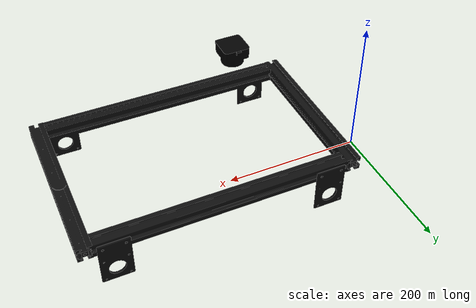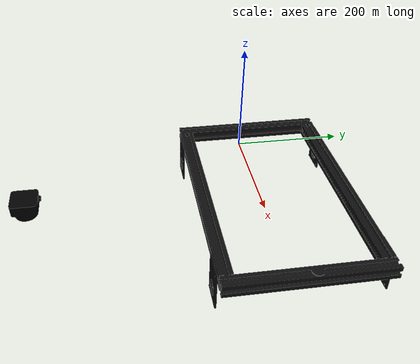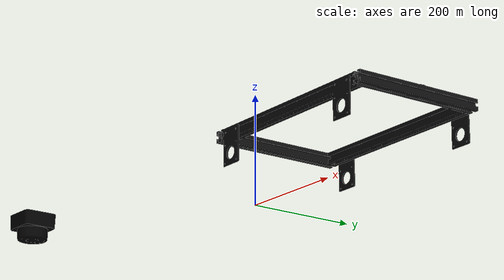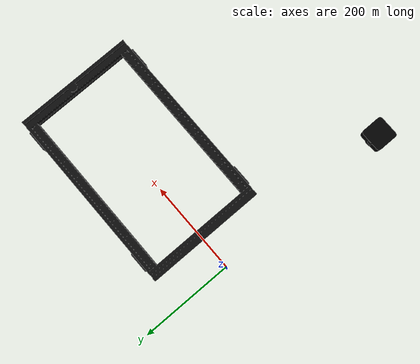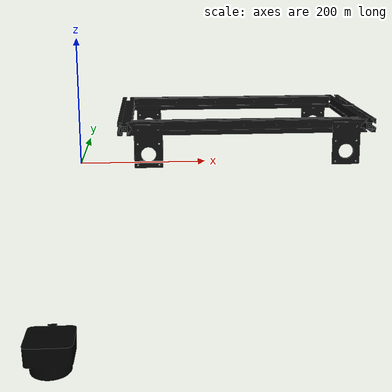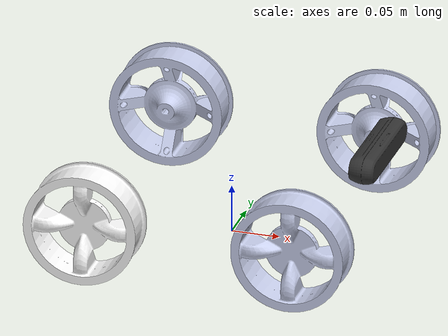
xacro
<?xml version="1.0"?>

<robot name="ugv" xmlns:xacro="http://www.ros.org/wiki/xacro">
<xacro:include filename="$(find ugv_gazebo)/urdf/ugv_gazebo.gazebo" />

    <!-- ++++++++++++++++++ Body Link ++++++++++++++++++ -->

 <link
    name="base_link">
    <inertial>
      <origin
        xyz="-0.0026167 0.00069134 0.081542"
        rpy="0 0 0" />
      <mass
        value="2.8764" />
      <inertia
        ixx="0.0070102"
        ixy="-3.1394E-06"
        ixz="-2.2948E-07"
        iyy="0.0047337"
        iyz="7.6928E-07"
        izz="0.011042" />
    </inertial>
    <visual>
      <origin
        xyz="0 0 0"
        rpy="0 0 0" />
      <geometry>
        <mesh
          filename="package://ugv_description/meshes/base_link.STL" />
      </geometry>
      <material
        name="base_link_material">
        <color
          rgba="0.05 0.05 0.05 1" />
      </material>
    </visual>
    <collision>
      <origin
        xyz="0 0 0"
        rpy="0 0 0" />
      <geometry>
        <mesh
          filename="package://ugv_description/meshes/base_link.STL" />
      </geometry>
    </collision>
  </link>
  <link
    name="lidar_link">
    <inertial>
      <origin
        xyz="-0.0003895 0.014987 -0.014606"
        rpy="0 0 0" />
      <mass
        value="0.035082" />
      <inertia
        ixx="1.932E-05"
        ixy="9.0089E-10"
        ixz="-8.8789E-10"
        iyy="1.9432E-05"
        iyz="4.0704E-08"
        izz="3.7019E-05" />
    </inertial>
    <visual>
      <origin
        xyz="0 0 -0.02"
        rpy="3.1347 0 -1.5708" />
      <geometry>
        <mesh
          filename="package://ugv_description/meshes/lidar_link.STL" />
      </geometry>
      <material
        name="">
        <color
          rgba="0 0 0 1" />
      </material>
    </visual>
    <collision>
      <origin
        xyz="0 0 -0.02"
        rpy="3.1347 0 -1.5708" />
      <geometry>
        <mesh
          filename="package://ugv_description/meshes/lidar_link.STL" />
      </geometry>
    </collision>
  </link>
  <joint
    name="lidar_joint"
    type="fixed">
    <origin
      xyz="-0.02 0 0.1523"
      rpy="0.0 0 0.0" />
    <parent
      link="base_link" />
    <child
      link="lidar_link" />
    <axis
      xyz="0 0 0" />
  </joint>
  <link
    name="realsense_link">
    <inertial>
      <origin
        xyz="4.59283901156922E-05 -0.000140918346274069 -0.0129943249794181"
        rpy="0.0 0 0.0" />
      <mass
        value="2.22840008128653" />
      <inertia
        ixx="0.000246394849613122"
        ixy="1.24521625300331E-06"
        ixz="7.30770065541246E-07"
        iyy="0.00263788263789951"
        iyz="-2.63315715533475E-06"
        izz="0.0026532807626956" />
    </inertial>
    <visual>
      <origin
        xyz="0 0 0"
        rpy="1.57 0 1.57" />
      <geometry>
        <mesh
          filename="package://ugv_description/meshes/realsense_link.STL" />
      </geometry>
      <material
        name="realsense_color">
        <color
          rgba="0.2 0.2 0.2 1" />
      </material>
    </visual>
    <collision>
      <origin
        xyz="0 0 0"
        rpy="1.57 0 1.57" />
      <geometry>
        <mesh
          filename="package://ugv_description/meshes/realsense_link.STL" />
      </geometry>
    </collision>
  </link>
  <joint
    name="realsense_joint"
    type="fixed">
    <origin
      xyz="0.166 0 0.1098"
      rpy="0.0 0 0.0" />
    <parent
      link="base_link" />
    <child
      link="realsense_link" />
    <axis
      xyz="0 0 0" />
  </joint>

  <joint name="camera_optical_joint" type="fixed">
    <origin xyz="0 0 0" rpy="-1.5708 0.0 -1.5708"/>
    <parent link="realsense_link"/>
    <child link="camera_frame_optical"/>
    </joint>
  <link name="camera_frame_optical"/>

  <link
    name="frontleft_wheel">
    <inertial>
      <origin
        xyz="0.02232 -4.2739E-07 -2.1671E-10"
        rpy="0 0 0" />
      <mass
        value="0.30698" />
      <inertia
        ixx="0.00090644"
        ixy="-4.6007E-10"
        ixz="-2.4986E-13"
        iyy="0.00048196"
        iyz="-1.7908E-12"
        izz="0.00048196" />
    </inertial>
    <visual>
      <origin
        xyz="0 0 0"
        rpy="0 0 0" />
      <geometry>
        <mesh
          filename="package://ugv_description/meshes/frontleft_wheel.STL" />
      </geometry>
      <material
        name="">
        <color
          rgba="0.79216 0.81961 0.93333 1" />
      </material>
    </visual>
    <collision>
      <origin
        xyz="0 0 0"
        rpy="0 0 0" />
      <geometry>
        <mesh
          filename="package://ugv_description/meshes/frontleft_wheel.STL" />
      </geometry>
    </collision>
  </link>
  <joint
    name="frontleft_joint"
    type="continuous">
    <origin
      xyz="0.10875 0.12569 0.0596"
      rpy="1.5708 0 1.5708" />
    <parent
      link="base_link" />
    <child
      link="frontleft_wheel" />
    <axis
      xyz="1 0 0" />
  </joint>
  <link
    name="frontright_wheel">
    <inertial>
      <origin
        xyz="0.0223197790305205 4.27307195981219E-07 1.1211999384475E-10"
        rpy="0 0 0" />
      <mass
        value="0.306983658309065" />
      <inertia
        ixx="0.000906438609574271"
        ixy="4.59822493069488E-10"
        ixz="-3.29773611919204E-15"
        iyy="0.000481963094381739"
        iyz="-1.29354320823362E-12"
        izz="0.000481963392879755" />
    </inertial>
    <visual>
      <origin
        xyz="0 0 0"
        rpy="0 0 0" />
      <geometry>
        <mesh
          filename="package://ugv_description/meshes/frontright_wheel.STL" />
      </geometry>
      <material
        name="">
        <color
          rgba="0.792156862745098 0.819607843137255 0.933333333333333 1" />
      </material>
    </visual>
    <collision>
      <origin
        xyz="0 0 0"
        rpy="0 0 0" />
      <geometry>
        <mesh
          filename="package://ugv_description/meshes/frontright_wheel.STL" />
      </geometry>
    </collision>
  </link>
  <joint
    name="frontright_joint"
    type="continuous">
    <origin
      xyz="0.10875 -0.12569 0.0596"
      rpy="1.5708 0 -1.5708" />
    <parent
      link="base_link" />
    <child
      link="frontright_wheel" />
    <axis
      xyz="-1 0 0" />
  </joint>
  <link
    name="backleft_wheel">
    <inertial>
      <origin
        xyz="0.0223197790372089 -4.27390142949957E-07 -1.04124348032641E-10"
        rpy="0 0 0" />
      <mass
        value="0.306983658426845" />
      <inertia
        ixx="0.0009064386096105"
        ixy="-4.60241090269607E-10"
        ixz="2.56558826759962E-13"
        iyy="0.000481963094847581"
        iyz="-1.04154930003381E-12"
        izz="0.000481963392375966" />
    </inertial>
    <visual>
      <origin
        xyz="0 0 0"
        rpy="0 0 0" />
      <geometry>
        <mesh
          filename="package://ugv_description/meshes/backleft_wheel.STL" />
      </geometry>
      <material
        name="">
        <color
          rgba="0.792156862745098 0.819607843137255 0.933333333333333 1" />
      </material>
    </visual>
    <collision>
      <origin
        xyz="0 0 0"
        rpy="0 0 0" />
      <geometry>
        <mesh
          filename="package://ugv_description/meshes/backleft_wheel.STL" />
      </geometry>
    </collision>
  </link>
  <joint
    name="backleft_joint"
    type="continuous">
    <origin
      xyz="-0.10875 0.12569 0.0596"
      rpy="1.5708 0 1.5708" />
    <parent
      link="base_link" />
    <child
      link="backleft_wheel" />
    <axis
      xyz="1 0 0" />
  </joint>
  <link
    name="backright_wheel">
    <inertial>
      <origin
        xyz="0 0 0"
        rpy="0 0 0" />
            <mass
        value="0.306983658426845" />
      <inertia
        ixx="0.0009064386096105"
        ixy="-4.60241090269607E-10"
        ixz="2.56558826759962E-13"
        iyy="0.000481963094847581"
        iyz="-1.04154930003381E-12"
        izz="0.000481963392375966" />
    </inertial>
    <visual>
      <origin
        xyz="0 0 0"
        rpy="0 0 0" />
      <geometry>
        <mesh
          filename="package://ugv_description/meshes/backright_wheel.STL" />
      </geometry>
      <material
        name="">
        <color
          rgba="1 1 1 1" />
      </material>
    </visual>
    <collision>
      <origin
        xyz="0 0 0"
        rpy="0 0 0" />
      <geometry>
        <mesh
          filename="package://ugv_description/meshes/backright_wheel.STL" />
      </geometry>
    </collision>
  </link>
  <joint
    name="backright_joint"
    type="continuous">
    <origin
      xyz="-0.10875 -0.12569 0.0596"
      rpy="-1.5708 0 -1.5708" />
    <parent
      link="base_link" />
    <child
      link="backright_wheel" />
    <axis
      xyz="-1 0 0" />
  </joint>

</robot>
